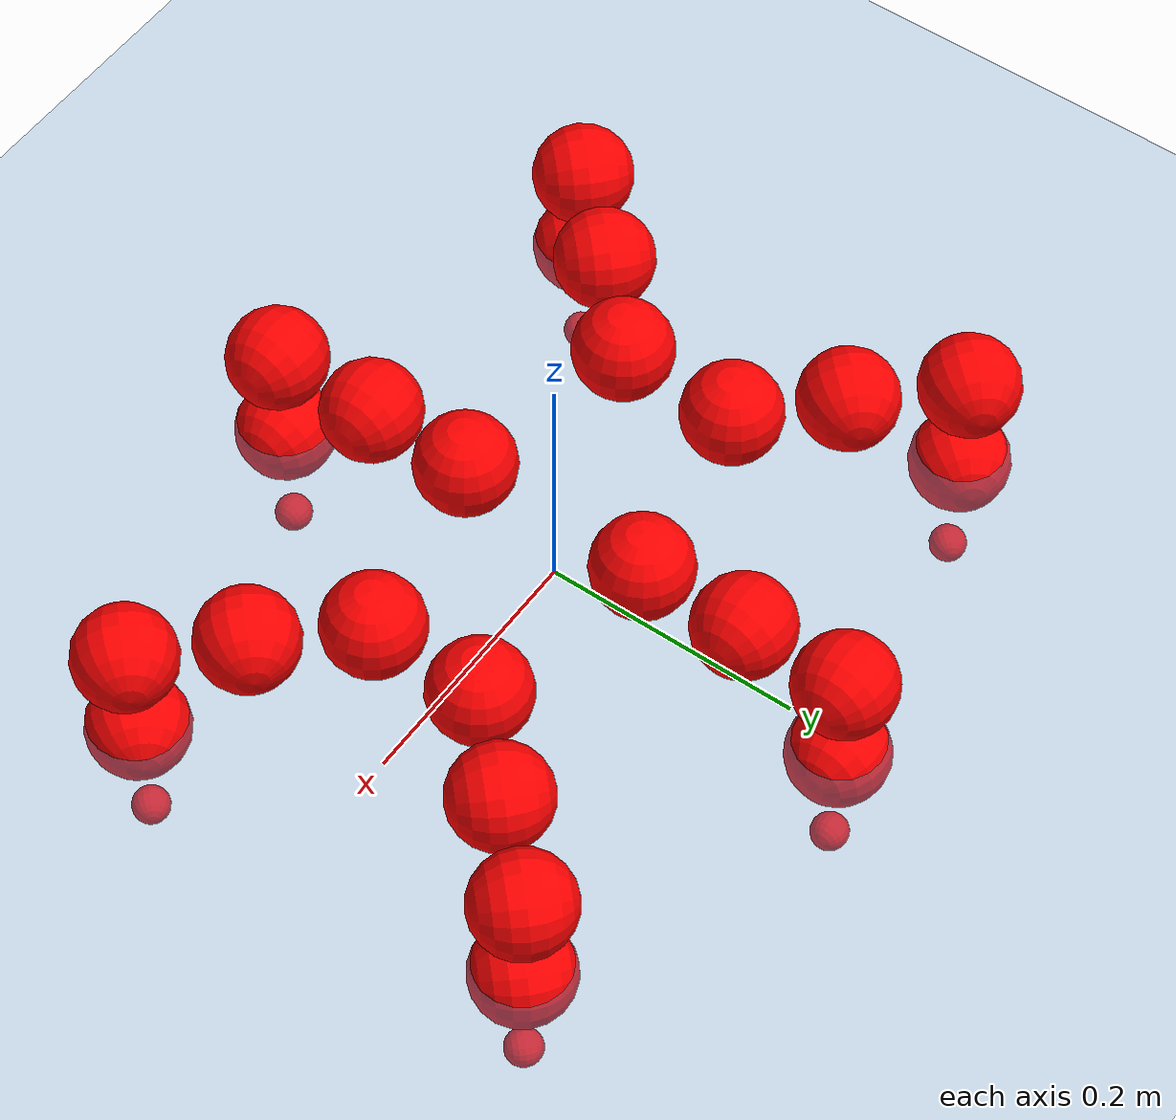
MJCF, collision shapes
<mujoco model="Golem">
  <compiler angle="radian" assetdir="assets" balanceinertia="true" inertiafromgeom="false"/>

  <option timestep="0.005" density="1.2" viscosity="2e-05"/>

  <size nkey="1"/>

  <visual>
    <quality shadowsize="8192"/>
    <map shadowclip="0.5"/>
  </visual>

  <default>
    <default class="/">
      <joint armature="0.01" damping="0.01" frictionloss="0.01"/>
      <geom contype="0" conaffinity="0" group="1" solref="-1000 -80"/>
      <site size="0.01 0.005 0.005" group="5"/>
      <general forcelimited="true" biastype="affine" gainprm="25" biasprm="0 -25 -0.5"/>
      <default class="visual">
        <geom type="mesh" group="2"/>
      </default>
      <default class="collision">
        <geom group="3"/>
      </default>
      <default class="foot">
        <geom size="0.01 0 0" condim="6" group="4" priority="1" solimp="0.015 1 0.01"/>
      </default>
      <default class="reward_collision_sphere">
        <geom group="5" rgba="1 0 0 1"/>
      </default>
    </default>
  </default>

  <asset>
    <texture type="skybox" colorspace="auto" name="//unnamed_texture_0" builtin="gradient" rgb1="0.95 0.95 0.95" rgb2="0.95 0.95 0.95" width="100" height="600"/>
    <texture type="2d" colorspace="auto" name="texplane" builtin="checker" rgb1="0.345 0.575 0.748" rgb2="0.345 0.575 0.748" markrgb="1 1 1" width="512" height="512"/>
    <material name="MatPlane" class="/" texture="texplane" texuniform="true" texrepeat="2 2" specular="0.9"/>
    <mesh name="body" class="/" file="body.stl" scale="0.001 0.001 0.001"/>
    <mesh name="coxa" class="/" file="coxa.stl" scale="0.001 0.001 0.001"/>
    <mesh name="femur" class="/" file="femur.stl" scale="0.001 0.001 0.001"/>
    <mesh name="tibia" class="/" file="tibia.stl" scale="0.001 0.001 0.001"/>
    <mesh name="tarsus" class="/" file="tarsus.stl" scale="0.001 0.001 0.001"/>
  </asset>

  <worldbody>
    <geom name="floor" class="/" size="100 100 0.125" type="plane" group="0" material="MatPlane"/>
    <light name="toplight_shadow" class="/" pos="0 0 5" dir="0.0990148 0.0990148 -0.990148" type="directional" ambient="0.04 0.04 0.04" diffuse="0.55 0.55 0.55" specular="0.12 0.12 0.12"/>
    <light name="toplight_fill" class="/" pos="0 0 5" dir="0.0990148 0.0990148 -0.990148" type="directional" castshadow="false" ambient="0.04 0.04 0.04" diffuse="0.3 0.3 0.3" specular="0.08 0.08 0.08"/>
    <body name="trunk" pos="0.000896287 0.000452731 -0.00209906" quat="1 -4.37469e-05 -0.00012388 9.27383e-05">
      <inertial pos="-0.000248496 -0.000226616 -0.00269523" quat="0.999998 0.00123002 -0.00132932 -0.00111217" mass="3.24096" diaginertia="0.00727413 0.00312 0.0178396"/>
      <joint name="//unnamed_joint_0" type="free"/>
      <geom name="//unnamed_geom_1" class="/" pos="0 0 0.071959" quat="1 0 0 0" type="mesh" rgba="0.9 0.9 0.9 1" mesh="body"/>
      <site name="imu" class="/" pos="0.125012 -0.00273322 0.108846" size="0.00952537"/>
      <camera name="track" class="/" pos="0 -1.58107 0" quat="0.707107 0.707107 0 0" mode="trackcom"/>
      <camera name="ego_camera" class="/" pos="0.122554 0 0.112436" quat="-0.5 -0.5 0.5 0.5"/>
      <body name="coxa_RR" pos="-0.168857 -0.066776 0.0716202" quat="0.382636 3.24411e-05 -0.000113527 -0.923899">
        <inertial pos="0.000316586 -0.00197216 0.000900274" quat="1 0.000571362 0.000539491 -0.000362002" mass="0.168155" diaginertia="0.00720391 0.00305152 0.0172334"/>
        <joint name="coxa_joint_RR" class="/" pos="0 0 0" axis="-0.00688144 0.00143186 -0.999975" range="-3.13692 3.13689" armature="0.00976692" damping="0.0143757" frictionloss="0.0097512"/>
        <geom name="//unnamed_geom_2" class="/" type="mesh" rgba="0.2 0.2 0.2 1" mesh="coxa"/>
        <geom name="//unnamed_geom_3" class="reward_collision_sphere" size="0.0381015" pos="-0.0282816 0 0"/>
        <body name="femur_RR" pos="0.0576243 -0.000860319 0.000635567" quat="0.500033 -0.499973 0.499967 0.500028">
          <inertial pos="0.000515929 -0.000573106 0.000674621" quat="1 0.000430958 0.000102472 -0.000430905" mass="0.17243" diaginertia="0.00739876 0.00305531 0.017882"/>
          <joint name="femur_joint_RR" class="/" pos="0 0 0" axis="0.00175557 -0.00135743 -0.999998" stiffness="0.000652627" range="-3.15076 3.10452" armature="0.00945491" damping="0.000901909" frictionloss="0.00968594"/>
          <geom name="//unnamed_geom_4" class="/" type="mesh" rgba="0.9 0.9 0.9 1" mesh="femur"/>
          <geom name="//unnamed_geom_5" class="reward_collision_sphere" size="0.0381015"/>
          <body name="tibia_RR" pos="0.00115599 -0.0848621 0.00152431" quat="5.53364e-05 1 8.3477e-05 0.000353732">
            <inertial pos="-0.00121854 0.000334517 -0.000127912" quat="0.999995 -0.00241554 -0.000849518 -0.00179605" mass="0.172527" diaginertia="0.00737099 0.00306633 0.0178663"/>
            <joint name="tibia_joint_RR" class="/" pos="0 0 0" axis="0.00530164 0.00116412 0.999985" range="-3.17898 3.1594" armature="0.00929812" damping="0" frictionloss="0.00978537"/>
            <geom name="//unnamed_geom_6" class="/" type="mesh" rgba="0.2 0.2 0.2 1" mesh="tibia"/>
            <geom name="//unnamed_geom_7" class="reward_collision_sphere" size="0.0381015"/>
            <body name="tarsus_RR" pos="0.0813723 0.00151613 0.000566905" quat="1 -0.000324819 -3.16575e-05 9.17382e-05">
              <inertial pos="0.0558515 0.0020266 -0.000421605" quat="0.496255 0.499015 0.502077 0.502626" mass="0.172455" diaginertia="0.00748516 0.00306501 0.0180189"/>
              <joint name="tarsus_joint_RR" class="/" pos="0 0 0" axis="-0.00145975 -0.000167805 0.999999" range="-3.13119 3.13639" armature="0.00980038" damping="0.00841213" frictionloss="0.0099193"/>
              <geom name="//unnamed_geom_8" class="/" type="mesh" rgba="0.9 0.9 0.9 1" mesh="tarsus"/>
              <geom name="foot_1" class="foot" size="0.00934439" pos="0.105585 0 0" quat="0 -0.707107 0 0.707107"/>
              <geom name="//unnamed_geom_10" class="reward_collision_sphere" size="0.0381015"/>
              <geom name="//unnamed_geom_11" class="reward_collision_sphere" size="0.0142881" pos="0.101342 0 0"/>
              <site name="foot_1" class="foot" pos="0.105585 0 0" quat="0 -0.707107 0 0.707107" size="0.00952537"/>
            </body>
          </body>
        </body>
      </body>
      <body name="coxa_RM" pos="-0.000451982 -0.105789 0.0701318" quat="0.706621 0.000130511 0.000907803 -0.707591">
        <inertial pos="-0.00123951 0.000211381 0.00129984" quat="0.999998 -0.00133341 0.000870916 -0.00106344" mass="0.170639" diaginertia="0.00723348 0.00303304 0.0182042"/>
        <joint name="coxa_joint_RM" class="/" pos="0 0 0" axis="-4.72274e-05 2.84839e-05 -1" range="-3.18461 3.13819" armature="0.0101253" damping="0.0135943" frictionloss="0.0094522"/>
        <geom name="//unnamed_geom_12" class="/" type="mesh" rgba="0.2 0.2 0.2 1" mesh="coxa"/>
        <geom name="//unnamed_geom_13" class="reward_collision_sphere" size="0.0381015" pos="-0.0282816 0 0"/>
        <body name="femur_RM" pos="0.0543719 0.000197964 -0.000765224" quat="0.500104 -0.500541 0.499507 0.499847">
          <inertial pos="-0.000852495 0.000930336 -0.000948425" quat="0.999973 -0.00711564 -0.00120616 -0.00120983" mass="0.174744" diaginertia="0.0075318 0.00309321 0.0180625"/>
          <joint name="femur_joint_RM" class="/" pos="0 0 0" axis="-0.000565422 0.00136881 -0.999999" range="-3.13421 3.13831" armature="0.00971506" damping="0.0108358" frictionloss="0.0100121"/>
          <geom name="//unnamed_geom_14" class="/" type="mesh" rgba="0.9 0.9 0.9 1" mesh="femur"/>
          <geom name="//unnamed_geom_15" class="reward_collision_sphere" size="0.0381015"/>
          <body name="tibia_RM" pos="0.000130476 -0.0840393 0.00107518" quat="3.29003e-05 1 -6.64366e-05 2.29366e-05">
            <inertial pos="0.00126916 0.001542 6.45282e-05" quat="0.999999 -0.00131297 -0.000990283 0.000435138" mass="0.177616" diaginertia="0.00762778 0.00316384 0.0183083"/>
            <joint name="tibia_joint_RM" class="/" pos="0 0 0" axis="0.00200238 0.00129854 0.999997" range="-3.13546 3.09092" armature="0.00921422" damping="0" frictionloss="0.00968512"/>
            <geom name="//unnamed_geom_16" class="/" type="mesh" rgba="0.2 0.2 0.2 1" mesh="tibia"/>
            <geom name="//unnamed_geom_17" class="reward_collision_sphere" size="0.0381015"/>
            <body name="tarsus_RM" pos="0.0807519 -0.00197462 -0.000183011" quat="1 0.00014347 0.000172684 3.60546e-06">
              <inertial pos="0.0555976 0.00255599 -0.000902533" quat="0.500008 0.500017 0.49998 0.499995" mass="0.167114" diaginertia="0.00741866 0.00306224 0.0180582"/>
              <joint name="tarsus_joint_RM" class="/" pos="0 0 0" axis="-0.000779978 -0.00298664 0.999995" range="-3.13385 3.14084" armature="0.00934224" damping="0.00494022" frictionloss="0.00950863"/>
              <geom name="//unnamed_geom_18" class="/" type="mesh" rgba="0.9 0.9 0.9 1" mesh="tarsus"/>
              <geom name="foot_2" class="foot" size="0.00922313" pos="0.105585 0 0" quat="0 -0.707107 0 0.707107"/>
              <geom name="//unnamed_geom_20" class="reward_collision_sphere" size="0.0381015"/>
              <geom name="//unnamed_geom_21" class="reward_collision_sphere" size="0.0142881" pos="0.101342 0 0"/>
              <site name="foot_2" class="foot" pos="0.105585 0 0" quat="0 -0.707107 0 0.707107" size="0.00952537"/>
            </body>
          </body>
        </body>
      </body>
      <body name="coxa_RF" pos="0.168048 -0.0649011 0.0713638" quat="0.923856 9.78946e-05 3.09173e-05 -0.38274">
        <inertial pos="-0.00152019 -0.000571144 0.00135706" quat="0.999997 0.0020182 -0.000935168 0.000491215" mass="0.176012" diaginertia="0.0076735 0.00308415 0.0184846"/>
        <joint name="coxa_joint_RF" class="/" pos="0 0 0" axis="0.0047426 0.00122931 -0.999988" range="-3.13258 3.13904" armature="0.00906734" damping="0.00258618" frictionloss="0.0094479"/>
        <geom name="//unnamed_geom_22" class="/" type="mesh" rgba="0.2 0.2 0.2 1" mesh="coxa"/>
        <geom name="//unnamed_geom_23" class="reward_collision_sphere" size="0.0381015" pos="-0.0282816 0 0"/>
        <body name="femur_RF" pos="0.0576359 -0.00161714 -0.000214524" quat="0.499488 -0.499749 0.500507 0.500255">
          <inertial pos="-0.00034 0.00080712 0.000567311" quat="0.999997 0.000884683 0.00181213 -0.00100684" mass="0.165182" diaginertia="0.00740649 0.00303193 0.017536"/>
          <joint name="femur_joint_RF" class="/" pos="0 0 0" axis="0.0005193 0.001583 -0.999999" range="-3.16027 3.09989" armature="0.00847772" damping="0.00569936" frictionloss="0.00845061"/>
          <geom name="//unnamed_geom_24" class="/" type="mesh" rgba="0.9 0.9 0.9 1" mesh="femur"/>
          <geom name="//unnamed_geom_25" class="reward_collision_sphere" size="0.0381015"/>
          <body name="tibia_RF" pos="-0.000614786 -0.0833603 0.00174273" quat="-2.83654e-05 1 0.00020609 -1.56177e-05">
            <inertial pos="-0.00174026 0.000368323 -2.16963e-05" quat="0.999999 0.000721961 0.000884708 -0.00119904" mass="0.174155" diaginertia="0.0073724 0.00308868 0.0179749"/>
            <joint name="tibia_joint_RF" class="/" pos="0 0 0" axis="-0.00046721 -0.000403933 1" range="-3.14269 3.14526" armature="0.00941162" damping="0" frictionloss="0.00934694"/>
            <geom name="//unnamed_geom_26" class="/" type="mesh" rgba="0.2 0.2 0.2 1" mesh="tibia"/>
            <geom name="//unnamed_geom_27" class="reward_collision_sphere" size="0.0381015"/>
            <body name="tarsus_RF" pos="0.0813125 -0.00175257 -0.00112438" quat="1 0.000138279 5.87314e-05 4.63584e-05">
              <inertial pos="0.0551621 0.000554747 -0.000159564" quat="0.501661 0.499041 0.491321 0.507836" mass="0.173873" diaginertia="0.00750667 0.00312854 0.0176547"/>
              <joint name="tarsus_joint_RF" class="/" pos="0 0 0" axis="0.000137635 0.000159867 1" stiffness="0.00054113" range="-3.12871 3.14302" armature="0.00853927" damping="0.00352194" frictionloss="0.0088834"/>
              <geom name="//unnamed_geom_28" class="/" type="mesh" rgba="0.9 0.9 0.9 1" mesh="tarsus"/>
              <geom name="foot_3" class="foot" size="0.00930265" pos="0.105585 0 0" quat="0 -0.707107 0 0.707107"/>
              <geom name="//unnamed_geom_30" class="reward_collision_sphere" size="0.0381015"/>
              <geom name="//unnamed_geom_31" class="reward_collision_sphere" size="0.0142881" pos="0.101342 0 0"/>
              <site name="foot_3" class="foot" pos="0.105585 0 0" quat="0 -0.707107 0 0.707107" size="0.00952537"/>
            </body>
          </body>
        </body>
      </body>
      <body name="coxa_LR" pos="-0.1668 0.0686931 0.0708535" quat="0.382667 -6.27405e-05 -6.92883e-05 0.923886">
        <inertial pos="-0.000927378 -5.24057e-05 -6.593e-05" quat="0.999949 0.00254624 -0.00462264 0.00862901" mass="0.175104" diaginertia="0.00741307 0.00312822 0.017944"/>
        <joint name="coxa_joint_LR" class="/" pos="0 0 0" axis="0.00175439 0.000164941 -0.999998" range="-3.13379 3.12203" armature="0.00995879" damping="0.0122196" frictionloss="0.0090407"/>
        <geom name="//unnamed_geom_32" class="/" type="mesh" rgba="0.2 0.2 0.2 1" mesh="coxa"/>
        <geom name="//unnamed_geom_33" class="reward_collision_sphere" size="0.0381015" pos="-0.0282816 0 0"/>
        <body name="femur_LR" pos="0.0556057 -0.00126033 0.000318501" quat="0.499961 -0.499901 0.500109 0.500029">
          <inertial pos="-0.0014621 -0.0020546 0.00171868" quat="1 -0.000401626 0.000130694 -6.57974e-05" mass="0.175453" diaginertia="0.00732259 0.00312339 0.0180386"/>
          <joint name="femur_joint_LR" class="/" pos="0 0 0" axis="-0.00713671 0.00840872 0.999939" range="-3.14678 3.12554" armature="0.010661" damping="0.00274792" frictionloss="0.00892698"/>
          <geom name="//unnamed_geom_34" class="/" type="mesh" rgba="0.9 0.9 0.9 1" mesh="femur"/>
          <geom name="//unnamed_geom_35" class="reward_collision_sphere" size="0.0381015"/>
          <body name="tibia_LR" pos="0.00127815 -0.0879936 -0.000851749" quat="-0.000175904 1 0.000166094 0.000134933">
            <inertial pos="-0.000311061 -0.00176955 0.000231509" quat="0.999994 0.00168058 -0.00222218 0.00200129" mass="0.17041" diaginertia="0.00743259 0.00305131 0.0174088"/>
            <joint name="tibia_joint_LR" class="/" pos="0 0 0" axis="0.00662827 0.00242108 -0.999975" range="-3.13667 3.10647" armature="0.00944697" damping="0" frictionloss="0.00966292"/>
            <geom name="//unnamed_geom_36" class="/" type="mesh" rgba="0.2 0.2 0.2 1" mesh="tibia"/>
            <geom name="//unnamed_geom_37" class="reward_collision_sphere" size="0.0381015"/>
            <body name="tarsus_LR" pos="0.0861905 -0.000210336 0.000633393" quat="1 2.08096e-05 -1.40328e-05 3.73461e-05">
              <inertial pos="0.0585859 -0.00054344 -0.000642014" quat="0.500101 0.499977 0.499063 0.500857" mass="0.173043" diaginertia="0.00743691 0.00307764 0.0178601"/>
              <joint name="tarsus_joint_LR" class="/" pos="0 0 0" axis="-0.00160961 -0.00384025 -0.999991" range="-3.15633 3.13056" armature="0.00897378" damping="0.027696" frictionloss="0.00944722"/>
              <geom name="//unnamed_geom_38" class="/" type="mesh" rgba="0.9 0.9 0.9 1" mesh="tarsus"/>
              <geom name="foot_4" class="foot" size="0.00957891" pos="0.105585 0 0" quat="0.707107 0 -0.707107 0"/>
              <geom name="//unnamed_geom_40" class="reward_collision_sphere" size="0.0381015"/>
              <geom name="//unnamed_geom_41" class="reward_collision_sphere" size="0.0142881" pos="0.101342 0 0"/>
              <site name="foot_4" class="foot" pos="0.105585 0 0" quat="0.707107 0 -0.707107 0" size="0.00952537"/>
            </body>
          </body>
        </body>
      </body>
      <body name="coxa_LM" pos="0.00157508 0.103615 0.0723507" quat="0.707157 -1.26441e-05 -6.75198e-05 0.707056">
        <inertial pos="0.000315692 -0.00109758 -0.000556572" quat="0.999995 -0.000377008 -0.00314207 -0.000592958" mass="0.169109" diaginertia="0.00750561 0.0031039 0.0176848"/>
        <joint name="coxa_joint_LM" class="/" pos="0 0 0" axis="-0.0049661 0.00651431 -0.999966" range="-3.15757 3.18371" armature="0.00954741" damping="0.0104959" frictionloss="0.00967853"/>
        <geom name="//unnamed_geom_42" class="/" type="mesh" rgba="0.2 0.2 0.2 1" mesh="coxa"/>
        <geom name="//unnamed_geom_43" class="reward_collision_sphere" size="0.0381015" pos="-0.0282816 0 0"/>
        <body name="femur_LM" pos="0.0552746 0.00098794 -0.00277697" quat="0.499616 -0.500563 0.499659 0.500162">
          <inertial pos="0.000574039 -0.000445828 -0.00032226" quat="0.999999 0.000863053 -0.000261777 -0.00101745" mass="0.179166" diaginertia="0.00757194 0.00311806 0.0183858"/>
          <joint name="femur_joint_LM" class="/" pos="0 0 0" axis="0.00120373 0.000870061 0.999999" stiffness="0.00711249" range="-3.17695 3.10346" armature="0.00908386" damping="0" frictionloss="0.00966139"/>
          <geom name="//unnamed_geom_44" class="/" type="mesh" rgba="0.9 0.9 0.9 1" mesh="femur"/>
          <geom name="//unnamed_geom_45" class="reward_collision_sphere" size="0.0381015"/>
          <body name="tibia_LM" pos="0.00109802 -0.0821829 0.000290253" quat="0.0001696 1 -0.000116818 0.000480489">
            <inertial pos="0.000195344 -0.00146691 1.54218e-05" quat="0.999987 -0.00432516 -0.00255316 0.00103623" mass="0.170061" diaginertia="0.00744802 0.00298968 0.0178367"/>
            <joint name="tibia_joint_LM" class="/" pos="0 0 0" axis="-2.7879e-05 -4.13747e-06 -1" range="-3.14218 3.14246" armature="0.00875281" damping="0" frictionloss="0.00957818"/>
            <geom name="//unnamed_geom_46" class="/" type="mesh" rgba="0.2 0.2 0.2 1" mesh="tibia"/>
            <geom name="//unnamed_geom_47" class="reward_collision_sphere" size="0.0381015"/>
            <body name="tarsus_LM" pos="0.0842995 -0.000432878 -0.000568539" quat="1 4.67996e-05 0.00013414 -0.00029277">
              <inertial pos="0.0571204 0.000434036 0.00103729" quat="0.499893 0.502822 0.499654 0.497617" mass="0.174803" diaginertia="0.00724409 0.00312817 0.0180222"/>
              <joint name="tarsus_joint_LM" class="/" pos="0 0 0" axis="-0.00130294 -0.000309156 -0.999999" range="-3.11809 3.14039" armature="0.00926846" damping="0" frictionloss="0.00948634"/>
              <geom name="//unnamed_geom_48" class="/" type="mesh" rgba="0.9 0.9 0.9 1" mesh="tarsus"/>
              <geom name="foot_5" class="foot" size="0.00877475" pos="0.105585 0 0" quat="0.707107 0 -0.707107 0"/>
              <geom name="//unnamed_geom_50" class="reward_collision_sphere" size="0.0381015"/>
              <geom name="//unnamed_geom_51" class="reward_collision_sphere" size="0.0142881" pos="0.101342 0 0"/>
              <site name="foot_5" class="foot" pos="0.105585 0 0" quat="0.707107 0 -0.707107 0" size="0.00952537"/>
            </body>
          </body>
        </body>
      </body>
      <body name="coxa_LF" pos="0.169755 0.0660503 0.0716787" quat="0.924074 0.0004831 0.000670544 0.382212">
        <inertial pos="0.000364247 0.000153274 0.00116635" quat="0.999992 -0.00245184 -0.00305643 -0.000289591" mass="0.175362" diaginertia="0.00753216 0.0030313 0.0181756"/>
        <joint name="coxa_joint_LF" class="/" pos="0 0 0" axis="0.00199974 0.0087598 -0.99996" range="-3.14267 3.14753" armature="0.00973428" damping="0.00410789" frictionloss="0.00898315"/>
        <geom name="//unnamed_geom_52" class="/" type="mesh" rgba="0.2 0.2 0.2 1" mesh="coxa"/>
        <geom name="//unnamed_geom_53" class="reward_collision_sphere" size="0.0381015" pos="-0.0282816 0 0"/>
        <body name="femur_LF" pos="0.0568118 0.000861496 6.70691e-05" quat="0.500086 -0.49972 0.499893 0.5003">
          <inertial pos="5.4791e-05 -0.000120629 0.00181233" quat="0.999999 0.00111249 0.000818932 2.51966e-05" mass="0.178426" diaginertia="0.00738291 0.00311991 0.0180337"/>
          <joint name="femur_joint_LF" class="/" pos="0 0 0" axis="0.00380314 -0.00248856 0.99999" range="-3.13083 3.14098" armature="0.00966074" damping="0.00370102" frictionloss="0.0102484"/>
          <geom name="//unnamed_geom_54" class="/" type="mesh" rgba="0.9 0.9 0.9 1" mesh="femur"/>
          <geom name="//unnamed_geom_55" class="reward_collision_sphere" size="0.0381015"/>
          <body name="tibia_LF" pos="0.000348981 -0.0836713 0.0018978" quat="0.000607973 0.999999 0.000232052 -0.000778033">
            <inertial pos="-0.000343089 0.00129842 -0.00161107" quat="0.999951 -0.00202196 -0.000850252 -0.00964436" mass="0.176368" diaginertia="0.00746463 0.0031021 0.0179973"/>
            <joint name="tibia_joint_LF" class="/" pos="0 0 0" axis="0.00083294 -0.00267766 -0.999996" range="-3.09252 3.12158" armature="0.00934233" damping="0.0114244" frictionloss="0.00950266"/>
            <geom name="//unnamed_geom_56" class="/" type="mesh" rgba="0.2 0.2 0.2 1" mesh="tibia"/>
            <geom name="//unnamed_geom_57" class="reward_collision_sphere" size="0.0381015"/>
            <body name="tarsus_LF" pos="0.084348 0.00168039 0.000803444" quat="1 4.98566e-05 -0.000362321 -3.33242e-05">
              <inertial pos="0.0547853 0.00105212 -0.00044746" quat="0.499769 0.500113 0.499534 0.500583" mass="0.172457" diaginertia="0.00744982 0.00307587 0.0182847"/>
              <joint name="tarsus_joint_LF" class="/" pos="0 0 0" axis="0.00768763 -0.00423347 -0.999961" range="-3.14203 3.1164" armature="0.0103345" damping="0.00768381" frictionloss="0.0106229"/>
              <geom name="//unnamed_geom_58" class="/" type="mesh" rgba="0.9 0.9 0.9 1" mesh="tarsus"/>
              <geom name="foot_6" class="foot" size="0.00916189" pos="0.105585 0 0" quat="0.707107 0 -0.707107 0"/>
              <geom name="//unnamed_geom_60" class="reward_collision_sphere" size="0.0381015"/>
              <geom name="//unnamed_geom_61" class="reward_collision_sphere" size="0.0142881" pos="0.101342 0 0"/>
              <site name="foot_6" class="foot" pos="0.105585 0 0" quat="0.707107 0 -0.707107 0" size="0.00952537"/>
            </body>
          </body>
        </body>
      </body>
    </body>
  </worldbody>

  <contact>
    <pair class="/" geom1="floor" geom2="foot_1" name="//unnamed_contact_0"/>
    <pair class="/" geom1="floor" geom2="foot_2" name="//unnamed_contact_1"/>
    <pair class="/" geom1="floor" geom2="foot_3" name="//unnamed_contact_2"/>
    <pair class="/" geom1="floor" geom2="foot_4" name="//unnamed_contact_3"/>
    <pair class="/" geom1="floor" geom2="foot_5" name="//unnamed_contact_4"/>
    <pair class="/" geom1="floor" geom2="foot_6" name="//unnamed_contact_5"/>
  </contact>

  <actuator>
    <general name="coxa_joint_RR" class="/" joint="coxa_joint_RR" forcerange="-6.92216 6.92216" gainprm="23.1864" biasprm="0 -23.1864 -0.496916"/>
    <general name="femur_joint_RR" class="/" joint="femur_joint_RR" forcerange="-7.10555 7.10555" gainprm="23.1864" biasprm="0 -23.1864 -0.496916"/>
    <general name="tibia_joint_RR" class="/" joint="tibia_joint_RR" forcerange="-6.75389 6.75389" gainprm="23.1864" biasprm="0 -23.1864 -0.496916"/>
    <general name="tarsus_joint_RR" class="/" joint="tarsus_joint_RR" forcerange="-6.66086 6.66086" gainprm="23.1864" biasprm="0 -23.1864 -0.496916"/>
    <general name="coxa_joint_RM" class="/" joint="coxa_joint_RM" forcerange="-6.47395 6.47395" gainprm="23.1864" biasprm="0 -23.1864 -0.496916"/>
    <general name="femur_joint_RM" class="/" joint="femur_joint_RM" forcerange="-6.94697 6.94697" gainprm="23.1864" biasprm="0 -23.1864 -0.496916"/>
    <general name="tibia_joint_RM" class="/" joint="tibia_joint_RM" forcerange="-7.04049 7.04049" gainprm="23.1864" biasprm="0 -23.1864 -0.496916"/>
    <general name="tarsus_joint_RM" class="/" joint="tarsus_joint_RM" forcerange="-6.88486 6.88486" gainprm="23.1864" biasprm="0 -23.1864 -0.496916"/>
    <general name="coxa_joint_RF" class="/" joint="coxa_joint_RF" forcerange="-7.09569 7.09569" gainprm="23.1864" biasprm="0 -23.1864 -0.496916"/>
    <general name="femur_joint_RF" class="/" joint="femur_joint_RF" forcerange="-7.56706 7.56706" gainprm="23.1864" biasprm="0 -23.1864 -0.496916"/>
    <general name="tibia_joint_RF" class="/" joint="tibia_joint_RF" forcerange="-7.46016 7.46016" gainprm="23.1864" biasprm="0 -23.1864 -0.496916"/>
    <general name="tarsus_joint_RF" class="/" joint="tarsus_joint_RF" forcerange="-7.38754 7.38754" gainprm="23.1864" biasprm="0 -23.1864 -0.496916"/>
    <general name="coxa_joint_LR" class="/" joint="coxa_joint_LR" forcerange="-6.96096 6.96096" gainprm="23.1864" biasprm="0 -23.1864 -0.496916"/>
    <general name="femur_joint_LR" class="/" joint="femur_joint_LR" forcerange="-6.86861 6.86861" gainprm="23.1864" biasprm="0 -23.1864 -0.496916"/>
    <general name="tibia_joint_LR" class="/" joint="tibia_joint_LR" forcerange="-7.54803 7.54803" gainprm="23.1864" biasprm="0 -23.1864 -0.496916"/>
    <general name="tarsus_joint_LR" class="/" joint="tarsus_joint_LR" forcerange="-7.45791 7.45791" gainprm="23.1864" biasprm="0 -23.1864 -0.496916"/>
    <general name="coxa_joint_LM" class="/" joint="coxa_joint_LM" forcerange="-7.03698 7.03698" gainprm="23.1864" biasprm="0 -23.1864 -0.496916"/>
    <general name="femur_joint_LM" class="/" joint="femur_joint_LM" forcerange="-6.82047 6.82047" gainprm="23.1864" biasprm="0 -23.1864 -0.496916"/>
    <general name="tibia_joint_LM" class="/" joint="tibia_joint_LM" forcerange="-6.94726 6.94726" gainprm="23.1864" biasprm="0 -23.1864 -0.496916"/>
    <general name="tarsus_joint_LM" class="/" joint="tarsus_joint_LM" forcerange="-7.2203 7.2203" gainprm="23.1864" biasprm="0 -23.1864 -0.496916"/>
    <general name="coxa_joint_LF" class="/" joint="coxa_joint_LF" forcerange="-6.89486 6.89486" gainprm="23.1864" biasprm="0 -23.1864 -0.496916"/>
    <general name="femur_joint_LF" class="/" joint="femur_joint_LF" forcerange="-7.3576 7.3576" gainprm="23.1864" biasprm="0 -23.1864 -0.496916"/>
    <general name="tibia_joint_LF" class="/" joint="tibia_joint_LF" forcerange="-7.27545 7.27545" gainprm="23.1864" biasprm="0 -23.1864 -0.496916"/>
    <general name="tarsus_joint_LF" class="/" joint="tarsus_joint_LF" forcerange="-7.09303 7.09303" gainprm="23.1864" biasprm="0 -23.1864 -0.496916"/>
  </actuator>

  <sensor>
    <gyro site="imu" name="imu_angular_velocity"/>
    <velocimeter site="imu" name="imu_linear_velocity"/>
    <framelinvel objtype="site" objname="foot_1" name="foot_1_global_linear_velocity"/>
    <framelinvel objtype="site" objname="foot_2" name="foot_2_global_linear_velocity"/>
    <framelinvel objtype="site" objname="foot_3" name="foot_3_global_linear_velocity"/>
    <framelinvel objtype="site" objname="foot_4" name="foot_4_global_linear_velocity"/>
    <framelinvel objtype="site" objname="foot_5" name="foot_5_global_linear_velocity"/>
    <framelinvel objtype="site" objname="foot_6" name="foot_6_global_linear_velocity"/>
  </sensor>

  <keyframe>
    <key name="home" qpos="0 0 0.1457 1 0 0 0 0 0 0 0 0 0 0 0 0 0 0 0 0 0 0 0 0 0 0 0 0 0 0 0"/>
  </keyframe>
</mujoco>
